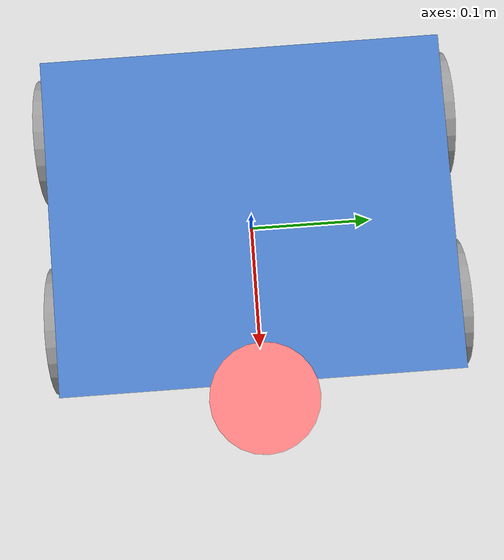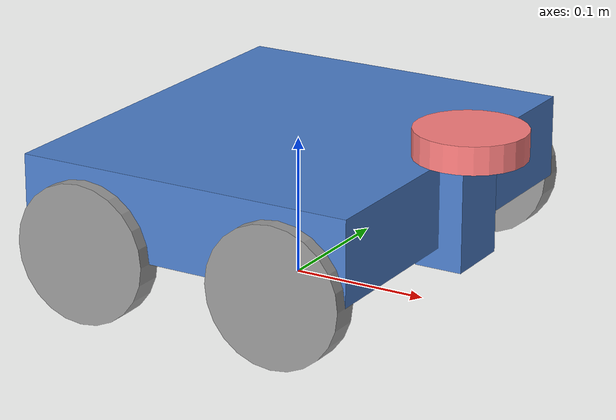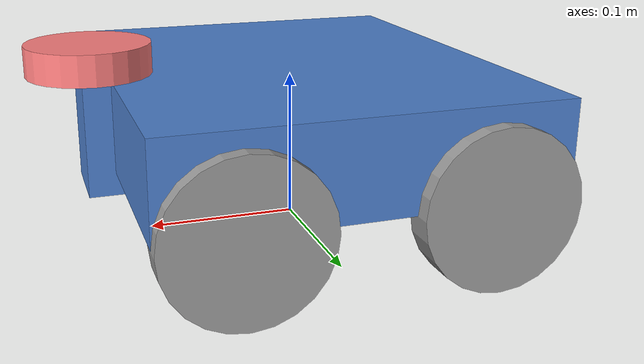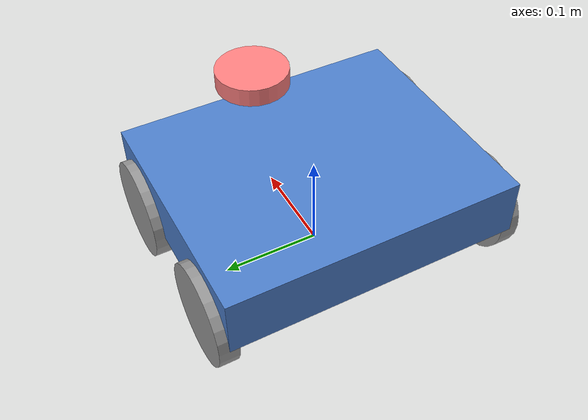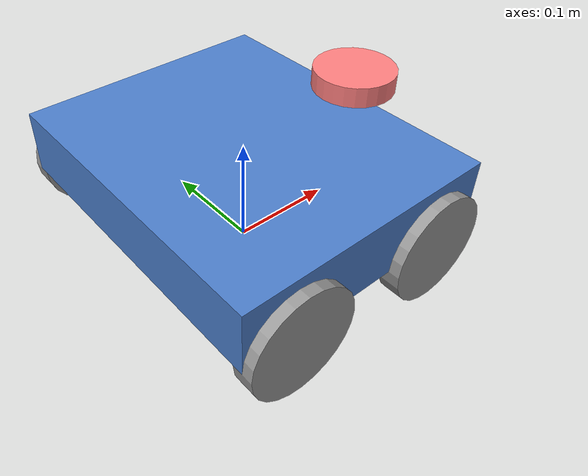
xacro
<?xml version="1.0"?>
<robot xmlns:xacro="http://www.ros.org/wiki/xacro" name="my_bot">

  <!-- =========================================================
       PARÁMETROS GENERALES
       ========================================================= -->
  <xacro:property name="wheel_radius"     value="0.05"/>   <!-- 5 cm -->
  <xacro:property name="wheel_width"      value="0.02"/>
  <xacro:property name="base_length"      value="0.25"/>
  <xacro:property name="base_width"       value="0.30"/>
  <xacro:property name="base_height"      value="0.06"/>
  <xacro:property name="wheel_separation" value="${base_width}"/>
  <xacro:property name="wheel_diam"       value="${2*wheel_radius}"/>

  <!-- =========================================================
       MATERIALES
       ========================================================= -->
  <material name="chassis_color"><color rgba="0.3 0.5 0.8 1"/></material>
  <material name="lidar_color"><color rgba="1.0 0.5 0.5 1"/></material>
  <material name="wheel_color"><color rgba="0.6 0.6 0.6 1"/></material>

  <!-- =========================================================
       CHASIS
       ========================================================= -->
  <link name="base_link">
    <!-- Visual for the main body -->
    <visual>
      <geometry>
        <box size="${base_length} ${base_width} ${base_height}" rpy="0 0 0"/>
      </geometry>
      <origin xyz="0 0 ${wheel_radius + base_height/2}"/>
      <material name="chassis_color"/>
    </visual>

    <!-- Visual for the LiDAR support bracket (COSMETIC ONLY) -->
    <visual name="lidar_support_visual">
      <geometry>
        <box size="0.035 0.05 0.09"/>
      </geometry>
      <origin xyz="${base_length/2} 0 ${base_height + 0.02}" rpy="0 0 0"/>
      <material name="chassis_color"/>
    </visual>

    <!-- Collision for the main body (Unchanged) -->
    <collision>
      <geometry>
        <box size="${base_length} ${base_width} ${base_height}"/>
      </geometry>
      <origin xyz="0 0 ${wheel_radius + base_height/2}"/>
    </collision>

    <!-- Inertial properties (Unchanged) -->
    <inertial>
      <mass value="4.0"/>
      <origin xyz="0 0 ${wheel_radius}" rpy="0 0 0"/>
      <inertia ixx="0.02" ixy="0.0" ixz="0.0" iyy="0.03" iyz="0.0" izz="0.04"/>
    </inertial>
  </link>

  <!-- =========================================================
       MACRO RUEDA
       ========================================================= -->
  <xacro:macro name="wheel" params="name x_offset y_offset">
  <link name="${name}_link">
    <visual>
      <geometry>
        <cylinder length="${wheel_width}" radius="${wheel_radius}"/>
      </geometry>
      <origin xyz="0 0 0" rpy="1.5708 0 0"/>
      <material name="wheel_color"/>
    </visual>
    <collision>
      <geometry>
        <cylinder length="${wheel_width}" radius="${wheel_radius}"/>
      </geometry>
      <origin xyz="0 0 0" rpy="1.5708 0 0"/>
    </collision>
    <inertial>
      <mass value="0.5"/>
      <origin xyz="0 0 0" rpy="0 0 0"/>
      <inertia ixx="0.0005" ixy="0.0" ixz="0.0"
               iyy="0.0005" iyz="0.0" izz="0.001"/>
    </inertial>
  </link>

  <joint name="${name}_joint" type="continuous">
    <parent link="base_link"/>
    <child  link="${name}_link"/>
    <origin xyz="${x_offset} ${y_offset} ${wheel_radius}" rpy="0 0 0"/>
    <axis xyz="0 1 0"/>
  </joint>
</xacro:macro>

  <!-- Instanciación de ruedas -->
  <!-- Ruedas delanteras -->
<xacro:wheel name="front_left_wheel"  x_offset="${ base_length/2 - 0.05}" y_offset=" ${ base_width/2}" />
<xacro:wheel name="front_right_wheel" x_offset="${ base_length/2 - 0.05}" y_offset="-${ base_width/2}" />

<!-- Ruedas traseras -->
<xacro:wheel name="rear_left_wheel"   x_offset="-${ base_length/2 - 0.05}" y_offset=" ${ base_width/2}" />
<xacro:wheel name="rear_right_wheel"  x_offset="-${ base_length/2 - 0.05}" y_offset="-${ base_width/2}" />

  <!-- =========================================================
       SENSOR LIDAR
       ========================================================= -->
  <link name="laser_link">
    <visual>
      <geometry>
        <cylinder length="0.02" radius="0.04"/>
      </geometry>
      <origin xyz="0 0 ${base_height}" rpy="0 0 0"/>
      <material name="lidar_color"/>
    </visual>
  </link>

  <joint name="laser_joint" type="fixed">
    <parent link="base_link"/>
    <child  link="laser_link"/>
    <origin xyz="${base_length/2 + 0.01} 0 ${base_height}" rpy="0 0 0"/>
  </joint>

  <!-- =========================================================
       PLUGINS GAZEBO
       ========================================================= -->
  <!-- Dif-Drive                                               -->
  <gazebo>
    <plugin name="diff_drive" filename="libgazebo_ros_diff_drive.so">
      <left_joint>front_left_wheel_joint</left_joint>
      <right_joint>front_right_wheel_joint</right_joint>

      <wheel_separation>${wheel_separation}</wheel_separation>
      <wheel_diameter>${wheel_diam}</wheel_diameter>

      <ros>
        <namespace>/lidar_bot</namespace>
        <remapping>cmd_vel:=/cmd_vel</remapping>
        <remapping>odom:=/odom</remapping>
      </ros>

      <publish_tf>true</publish_tf>
      <publish_odom>true</publish_odom>
      <publish_odom_tf>true</publish_odom_tf>
      <odometry_frame>odom</odometry_frame>
      <robot_base_frame>base_link</robot_base_frame>
      <update_rate>50</update_rate>
    </plugin>
  </gazebo>

  <!-- LIDAR como sensor ray   -->
  <gazebo reference="laser_link">
    <sensor type="ray" name="lidar">
      <update_rate>20</update_rate>
      <ray>
        <scan>
          <horizontal>
            <samples>720</samples>
            <resolution>1</resolution>
            <min_angle>-1.5708</min_angle>
            <max_angle>1.5708</max_angle>
          </horizontal>
        </scan>
        <range>
          <min>0.12</min>
          <max>6.0</max>
        </range>
      </ray>
      <plugin name="gazebo_laser" filename="libgazebo_ros_ray_sensor.so">
        <ros>
          <!-- remapea la salida interna ~/out a /scan -->
          <remapping>~/out:=scan</remapping>
        </ros>
        <!-- publica LaserScan en vez de PointCloud2 -->
        <output_type>sensor_msgs/LaserScan</output_type>
        <frame_name>laser_link</frame_name>
      </plugin>
    </sensor>
  </gazebo>

</robot>
